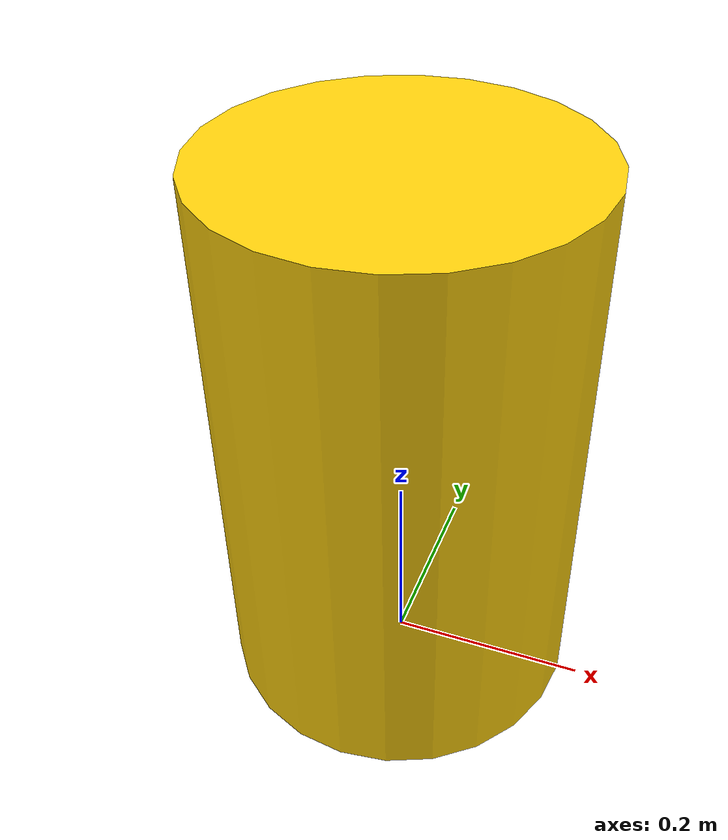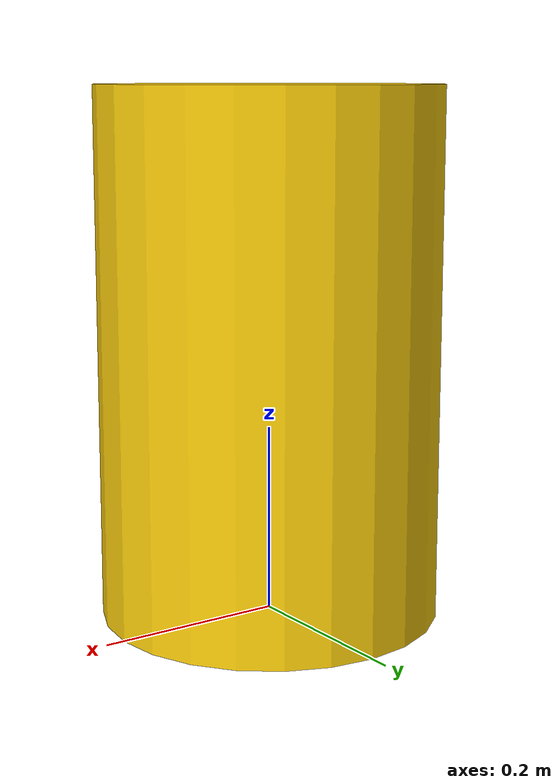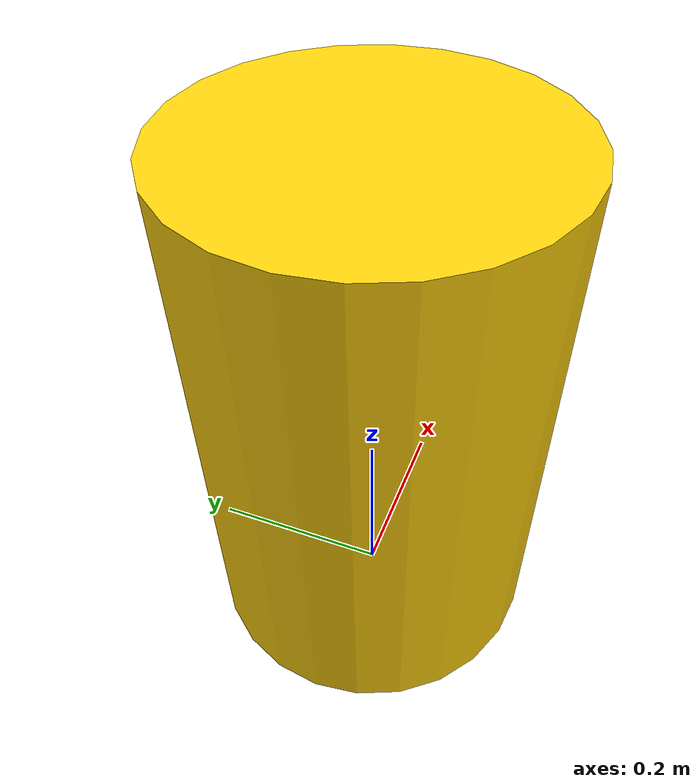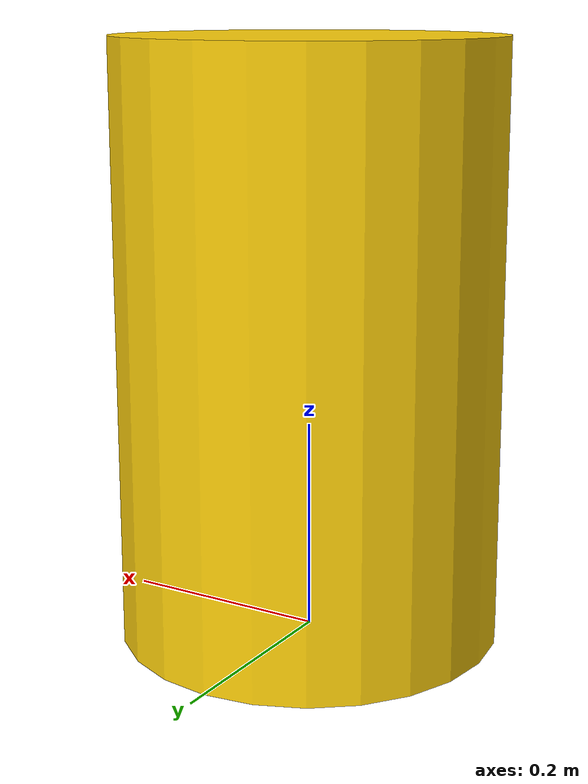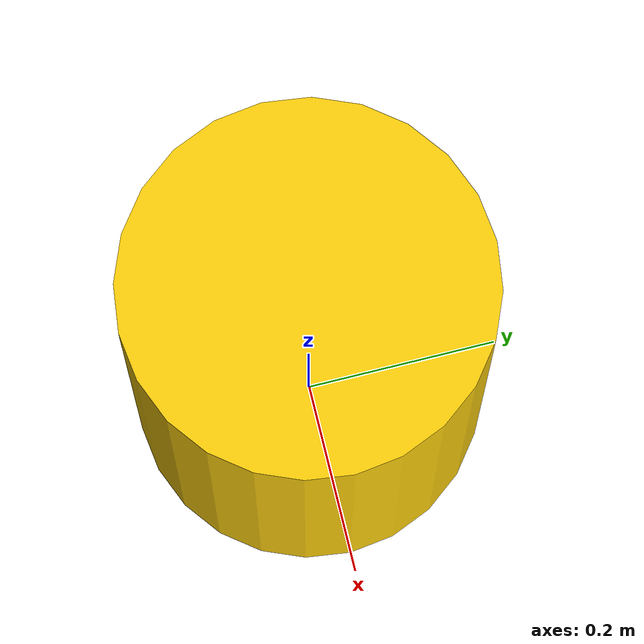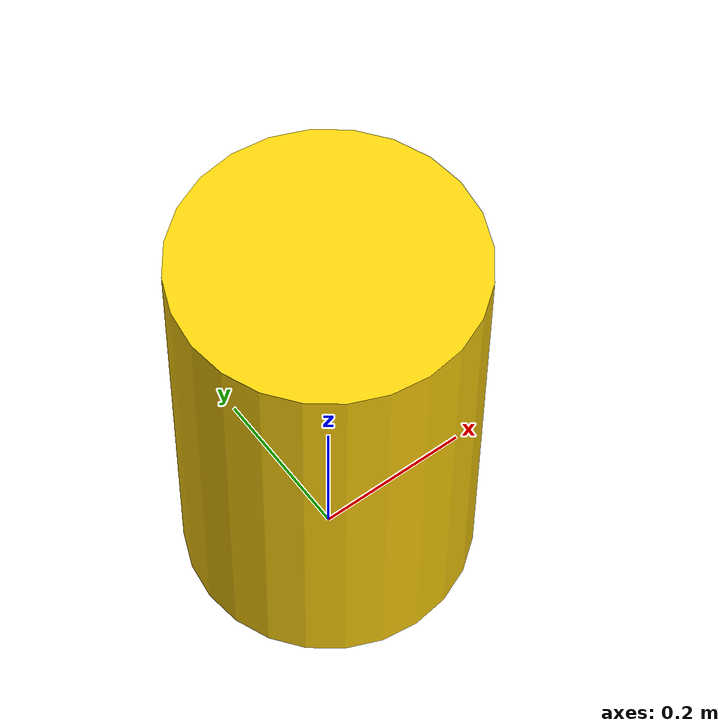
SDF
<?xml version='1.0'?>
<sdf version='1.9'>
  <model name='yellow_cone'>
    <static>true</static>
    <link name='link'>
      <pose>0 0 0 0 0 0</pose>
      <inertial>
        <inertia>
          <ixx>0.0016</ixx>
          <ixy>0</ixy>
          <ixz>0</ixz>
          <iyy>0.0016</iyy>
          <iyz>0</iyz>
          <izz>0.0010</izz>
        </inertia>
        <mass>0.45</mass>
      </inertial>
      <visual name='visual'>
        <pose>0 0 0.28 0 0 0</pose>
        <geometry>
          <cylinder>
            <radius>0.18</radius>
            <length>0.56</length>
          </cylinder>
        </geometry>
        <material>
          <ambient>0.8 0.62 0.02 1</ambient>
          <diffuse>1 0.82 0.04 1</diffuse>
        </material>
        <cast_shadows>1</cast_shadows>
      </visual>
      <collision name='collision'>
        <pose>0 0 0.28 0 0 0</pose>
        <max_contacts>3</max_contacts>
        <geometry>
          <cylinder>
            <radius>0.18</radius>
            <length>0.56</length>
          </cylinder>
        </geometry>
        <laser_retro>20.0</laser_retro>
      </collision>
    </link>
  </model>
</sdf>
